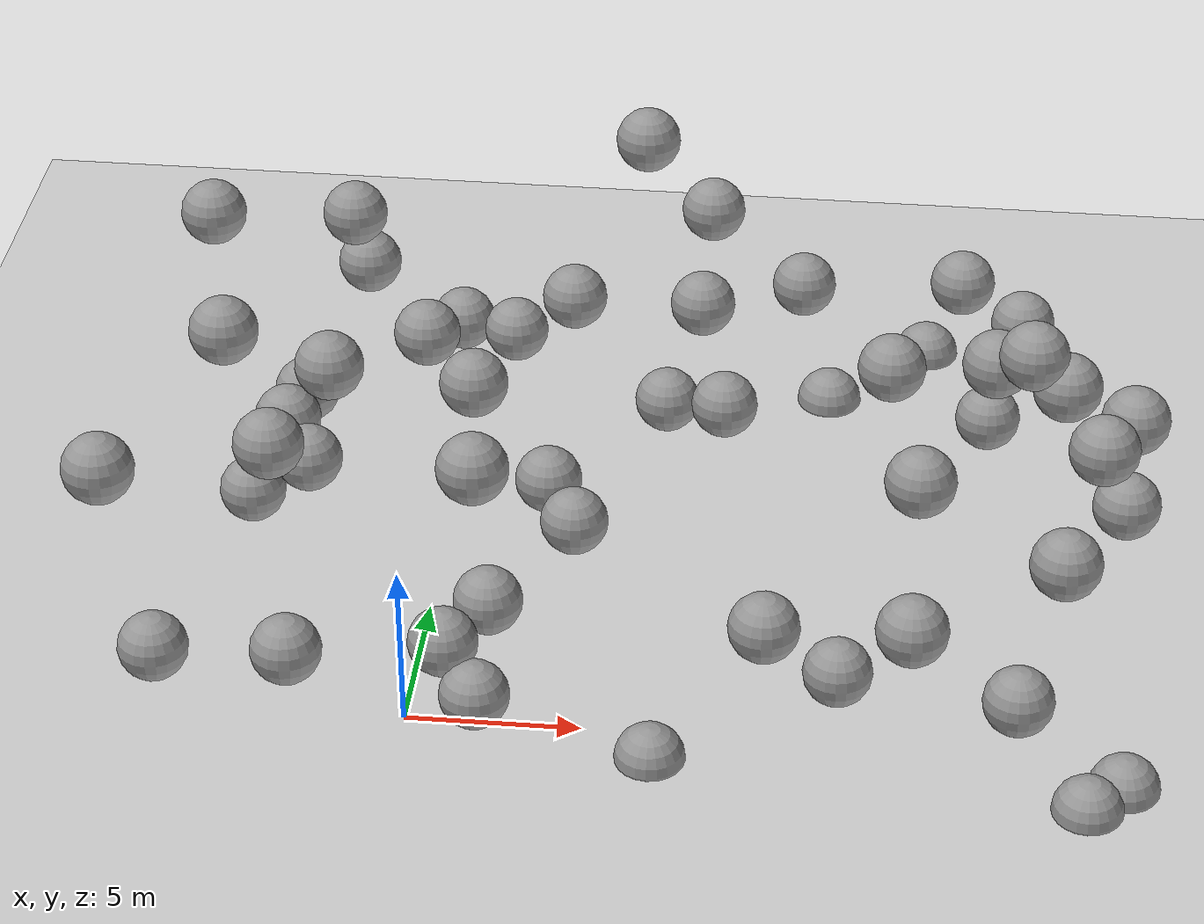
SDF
<sdf version="1.7">
 <world name="default">
  <model name="ground_plane">
   <static>1</static>
   <link name="link">
    <collision name="collision">
     <geometry><plane><normal>0 0 1</normal><size>100 100</size></plane></geometry>
     <surface>
      <contact><collide_bitmask>65535</collide_bitmask></contact>
      <friction><ode><mu>100</mu><mu2>50</mu2></ode></friction>
     </surface>
    </collision>
    <visual name="visual">
     <cast_shadows>0</cast_shadows>
     <geometry><plane><normal>0 0 1</normal><size>100 100</size></plane></geometry>
     <material>
      <script><uri>file://media/materials/scripts/gazebo.material</uri><name>Gazebo/Grey</name></script>
     </material>
    </visual>
   </link>
  </model>
  <model name="sphere_0">
   <static>1</static>
   <pose>17 8 8 0 0 0</pose>
   <link name="link">
    <inertial>
     <mass>418.87902047863906</mass>
     <inertia>
      <ixx>167.55160819145564</ixx>
      <iyy>167.55160819145564</iyy>
      <izz>167.55160819145564</izz>
      <ixy>0</ixy>
      <ixz>0</ixz>
      <iyz>0</iyz>
     </inertia>
    </inertial>
    <collision name="collision"><geometry><sphere><radius>1.0</radius></sphere></geometry></collision>
    <visual name="visual">
     <geometry><sphere><radius>1.0</radius></sphere></geometry>
     <material>
      <script><uri>file://media/materials/scripts/gazebo.material</uri><name>Gazebo/Grey</name></script>
     </material>
    </visual>
   </link>
  </model>
  <model name="sphere_1">
   <static>1</static>
   <pose>8 12 3 0 0 0</pose>
   <link name="link">
    <inertial>
     <mass>418.87902047863906</mass>
     <inertia>
      <ixx>167.55160819145564</ixx>
      <iyy>167.55160819145564</iyy>
      <izz>167.55160819145564</izz>
      <ixy>0</ixy>
      <ixz>0</ixz>
      <iyz>0</iyz>
     </inertia>
    </inertial>
    <collision name="collision"><geometry><sphere><radius>1.0</radius></sphere></geometry></collision>
    <visual name="visual">
     <geometry><sphere><radius>1.0</radius></sphere></geometry>
     <material>
      <script><uri>file://media/materials/scripts/gazebo.material</uri><name>Gazebo/Grey</name></script>
     </material>
    </visual>
   </link>
  </model>
  <model name="sphere_2">
   <static>1</static>
   <pose>7 -1 0 0 0 0</pose>
   <link name="link">
    <inertial>
     <mass>418.87902047863906</mass>
     <inertia>
      <ixx>167.55160819145564</ixx>
      <iyy>167.55160819145564</iyy>
      <izz>167.55160819145564</izz>
      <ixy>0</ixy>
      <ixz>0</ixz>
      <iyz>0</iyz>
     </inertia>
    </inertial>
    <collision name="collision"><geometry><sphere><radius>1.0</radius></sphere></geometry></collision>
    <visual name="visual">
     <geometry><sphere><radius>1.0</radius></sphere></geometry>
     <material>
      <script><uri>file://media/materials/scripts/gazebo.material</uri><name>Gazebo/Grey</name></script>
     </material>
    </visual>
   </link>
  </model>
  <model name="sphere_9">
   <static>1</static>
   <pose>18 8 7 0 0 0</pose>
   <link name="link">
    <inertial>
     <mass>418.87902047863906</mass>
     <inertia>
      <ixx>167.55160819145564</ixx>
      <iyy>167.55160819145564</iyy>
      <izz>167.55160819145564</izz>
      <ixy>0</ixy>
      <ixz>0</ixz>
      <iyz>0</iyz>
     </inertia>
    </inertial>
    <collision name="collision"><geometry><sphere><radius>1.0</radius></sphere></geometry></collision>
    <visual name="visual">
     <geometry><sphere><radius>1.0</radius></sphere></geometry>
     <material>
      <script><uri>file://media/materials/scripts/gazebo.material</uri><name>Gazebo/Grey</name></script>
     </material>
    </visual>
   </link>
  </model>
  <model name="sphere_10">
   <static>1</static>
   <pose>12 2 1 0 0 0</pose>
   <link name="link">
    <inertial>
     <mass>418.87902047863906</mass>
     <inertia>
      <ixx>167.55160819145564</ixx>
      <iyy>167.55160819145564</iyy>
      <izz>167.55160819145564</izz>
      <ixy>0</ixy>
      <ixz>0</ixz>
      <iyz>0</iyz>
     </inertia>
    </inertial>
    <collision name="collision"><geometry><sphere><radius>1.0</radius></sphere></geometry></collision>
    <visual name="visual">
     <geometry><sphere><radius>1.0</radius></sphere></geometry>
     <material>
      <script><uri>file://media/materials/scripts/gazebo.material</uri><name>Gazebo/Grey</name></script>
     </material>
    </visual>
   </link>
  </model>
  <model name="sphere_13">
   <static>1</static>
   <pose>-6 7 8 0 0 0</pose>
   <link name="link">
    <inertial>
     <mass>418.87902047863906</mass>
     <inertia>
      <ixx>167.55160819145564</ixx>
      <iyy>167.55160819145564</iyy>
      <izz>167.55160819145564</izz>
      <ixy>0</ixy>
      <ixz>0</ixz>
      <iyz>0</iyz>
     </inertia>
    </inertial>
    <collision name="collision"><geometry><sphere><radius>1.0</radius></sphere></geometry></collision>
    <visual name="visual">
     <geometry><sphere><radius>1.0</radius></sphere></geometry>
     <material>
      <script><uri>file://media/materials/scripts/gazebo.material</uri><name>Gazebo/Grey</name></script>
     </material>
    </visual>
   </link>
  </model>
  <model name="sphere_16">
   <static>1</static>
   <pose>19 -2 0 0 0 0</pose>
   <link name="link">
    <inertial>
     <mass>418.87902047863906</mass>
     <inertia>
      <ixx>167.55160819145564</ixx>
      <iyy>167.55160819145564</iyy>
      <izz>167.55160819145564</izz>
      <ixy>0</ixy>
      <ixz>0</ixz>
      <iyz>0</iyz>
     </inertia>
    </inertial>
    <collision name="collision"><geometry><sphere><radius>1.0</radius></sphere></geometry></collision>
    <visual name="visual">
     <geometry><sphere><radius>1.0</radius></sphere></geometry>
     <material>
      <script><uri>file://media/materials/scripts/gazebo.material</uri><name>Gazebo/Grey</name></script>
     </material>
    </visual>
   </link>
  </model>
  <model name="sphere_18">
   <static>1</static>
   <pose>-1 12 5 0 0 0</pose>
   <link name="link">
    <inertial>
     <mass>418.87902047863906</mass>
     <inertia>
      <ixx>167.55160819145564</ixx>
      <iyy>167.55160819145564</iyy>
      <izz>167.55160819145564</izz>
      <ixy>0</ixy>
      <ixz>0</ixz>
      <iyz>0</iyz>
     </inertia>
    </inertial>
    <collision name="collision"><geometry><sphere><radius>1.0</radius></sphere></geometry></collision>
    <visual name="visual">
     <geometry><sphere><radius>1.0</radius></sphere></geometry>
     <material>
      <script><uri>file://media/materials/scripts/gazebo.material</uri><name>Gazebo/Grey</name></script>
     </material>
    </visual>
   </link>
  </model>
  <model name="sphere_20">
   <static>1</static>
   <pose>14 3 7 0 0 0</pose>
   <link name="link">
    <inertial>
     <mass>418.87902047863906</mass>
     <inertia>
      <ixx>167.55160819145564</ixx>
      <iyy>167.55160819145564</iyy>
      <izz>167.55160819145564</izz>
      <ixy>0</ixy>
      <ixz>0</ixz>
      <iyz>0</iyz>
     </inertia>
    </inertial>
    <collision name="collision"><geometry><sphere><radius>1.0</radius></sphere></geometry></collision>
    <visual name="visual">
     <geometry><sphere><radius>1.0</radius></sphere></geometry>
     <material>
      <script><uri>file://media/materials/scripts/gazebo.material</uri><name>Gazebo/Grey</name></script>
     </material>
    </visual>
   </link>
  </model>
  <model name="sphere_22">
   <static>1</static>
   <pose>17 0 2 0 0 0</pose>
   <link name="link">
    <inertial>
     <mass>418.87902047863906</mass>
     <inertia>
      <ixx>167.55160819145564</ixx>
      <iyy>167.55160819145564</iyy>
      <izz>167.55160819145564</izz>
      <ixy>0</ixy>
      <ixz>0</ixz>
      <iyz>0</iyz>
     </inertia>
    </inertial>
    <collision name="collision"><geometry><sphere><radius>1.0</radius></sphere></geometry></collision>
    <visual name="visual">
     <geometry><sphere><radius>1.0</radius></sphere></geometry>
     <material>
      <script><uri>file://media/materials/scripts/gazebo.material</uri><name>Gazebo/Grey</name></script>
     </material>
    </visual>
   </link>
  </model>
  <model name="sphere_28">
   <static>1</static>
   <pose>-1 19 1 0 0 0</pose>
   <link name="link">
    <inertial>
     <mass>418.87902047863906</mass>
     <inertia>
      <ixx>167.55160819145564</ixx>
      <iyy>167.55160819145564</iyy>
      <izz>167.55160819145564</izz>
      <ixy>0</ixy>
      <ixz>0</ixz>
      <iyz>0</iyz>
     </inertia>
    </inertial>
    <collision name="collision"><geometry><sphere><radius>1.0</radius></sphere></geometry></collision>
    <visual name="visual">
     <geometry><sphere><radius>1.0</radius></sphere></geometry>
     <material>
      <script><uri>file://media/materials/scripts/gazebo.material</uri><name>Gazebo/Grey</name></script>
     </material>
    </visual>
   </link>
  </model>
  <model name="sphere_38">
   <static>1</static>
   <pose>1 17 2 0 0 0</pose>
   <link name="link">
    <inertial>
     <mass>418.87902047863906</mass>
     <inertia>
      <ixx>167.55160819145564</ixx>
      <iyy>167.55160819145564</iyy>
      <izz>167.55160819145564</izz>
      <ixy>0</ixy>
      <ixz>0</ixz>
      <iyz>0</iyz>
     </inertia>
    </inertial>
    <collision name="collision"><geometry><sphere><radius>1.0</radius></sphere></geometry></collision>
    <visual name="visual">
     <geometry><sphere><radius>1.0</radius></sphere></geometry>
     <material>
      <script><uri>file://media/materials/scripts/gazebo.material</uri><name>Gazebo/Grey</name></script>
     </material>
    </visual>
   </link>
  </model>
  <model name="sphere_41">
   <static>1</static>
   <pose>-6 9 1 0 0 0</pose>
   <link name="link">
    <inertial>
     <mass>418.87902047863906</mass>
     <inertia>
      <ixx>167.55160819145564</ixx>
      <iyy>167.55160819145564</iyy>
      <izz>167.55160819145564</izz>
      <ixy>0</ixy>
      <ixz>0</ixz>
      <iyz>0</iyz>
     </inertia>
    </inertial>
    <collision name="collision"><geometry><sphere><radius>1.0</radius></sphere></geometry></collision>
    <visual name="visual">
     <geometry><sphere><radius>1.0</radius></sphere></geometry>
     <material>
      <script><uri>file://media/materials/scripts/gazebo.material</uri><name>Gazebo/Grey</name></script>
     </material>
    </visual>
   </link>
  </model>
  <model name="sphere_45">
   <static>1</static>
   <pose>7 16 4 0 0 0</pose>
   <link name="link">
    <inertial>
     <mass>418.87902047863906</mass>
     <inertia>
      <ixx>167.55160819145564</ixx>
      <iyy>167.55160819145564</iyy>
      <izz>167.55160819145564</izz>
      <ixy>0</ixy>
      <ixz>0</ixz>
      <iyz>0</iyz>
     </inertia>
    </inertial>
    <collision name="collision"><geometry><sphere><radius>1.0</radius></sphere></geometry></collision>
    <visual name="visual">
     <geometry><sphere><radius>1.0</radius></sphere></geometry>
     <material>
      <script><uri>file://media/materials/scripts/gazebo.material</uri><name>Gazebo/Grey</name></script>
     </material>
    </visual>
   </link>
  </model>
  <model name="sphere_47">
   <static>1</static>
   <pose>5 19 8 0 0 0</pose>
   <link name="link">
    <inertial>
     <mass>418.87902047863906</mass>
     <inertia>
      <ixx>167.55160819145564</ixx>
      <iyy>167.55160819145564</iyy>
      <izz>167.55160819145564</izz>
      <ixy>0</ixy>
      <ixz>0</ixz>
      <iyz>0</iyz>
     </inertia>
    </inertial>
    <collision name="collision"><geometry><sphere><radius>1.0</radius></sphere></geometry></collision>
    <visual name="visual">
     <geometry><sphere><radius>1.0</radius></sphere></geometry>
     <material>
      <script><uri>file://media/materials/scripts/gazebo.material</uri><name>Gazebo/Grey</name></script>
     </material>
    </visual>
   </link>
  </model>
  <model name="sphere_62">
   <static>1</static>
   <pose>15 18 4 0 0 0</pose>
   <link name="link">
    <inertial>
     <mass>418.87902047863906</mass>
     <inertia>
      <ixx>167.55160819145564</ixx>
      <iyy>167.55160819145564</iyy>
      <izz>167.55160819145564</izz>
      <ixy>0</ixy>
      <ixz>0</ixz>
      <iyz>0</iyz>
     </inertia>
    </inertial>
    <collision name="collision"><geometry><sphere><radius>1.0</radius></sphere></geometry></collision>
    <visual name="visual">
     <geometry><sphere><radius>1.0</radius></sphere></geometry>
     <material>
      <script><uri>file://media/materials/scripts/gazebo.material</uri><name>Gazebo/Grey</name></script>
     </material>
    </visual>
   </link>
  </model>
  <model name="sphere_67">
   <static>1</static>
   <pose>16 9 7 0 0 0</pose>
   <link name="link">
    <inertial>
     <mass>418.87902047863906</mass>
     <inertia>
      <ixx>167.55160819145564</ixx>
      <iyy>167.55160819145564</iyy>
      <izz>167.55160819145564</izz>
      <ixy>0</ixy>
      <ixz>0</ixz>
      <iyz>0</iyz>
     </inertia>
    </inertial>
    <collision name="collision"><geometry><sphere><radius>1.0</radius></sphere></geometry></collision>
    <visual name="visual">
     <geometry><sphere><radius>1.0</radius></sphere></geometry>
     <material>
      <script><uri>file://media/materials/scripts/gazebo.material</uri><name>Gazebo/Grey</name></script>
     </material>
    </visual>
   </link>
  </model>
  <model name="sphere_70">
   <static>1</static>
   <pose>4 7 2 0 0 0</pose>
   <link name="link">
    <inertial>
     <mass>418.87902047863906</mass>
     <inertia>
      <ixx>167.55160819145564</ixx>
      <iyy>167.55160819145564</iyy>
      <izz>167.55160819145564</izz>
      <ixy>0</ixy>
      <ixz>0</ixz>
      <iyz>0</iyz>
     </inertia>
    </inertial>
    <collision name="collision"><geometry><sphere><radius>1.0</radius></sphere></geometry></collision>
    <visual name="visual">
     <geometry><sphere><radius>1.0</radius></sphere></geometry>
     <material>
      <script><uri>file://media/materials/scripts/gazebo.material</uri><name>Gazebo/Grey</name></script>
     </material>
    </visual>
   </link>
  </model>
  <model name="sphere_73">
   <static>1</static>
   <pose>-4 3 7 0 0 0</pose>
   <link name="link">
    <inertial>
     <mass>418.87902047863906</mass>
     <inertia>
      <ixx>167.55160819145564</ixx>
      <iyy>167.55160819145564</iyy>
      <izz>167.55160819145564</izz>
      <ixy>0</ixy>
      <ixz>0</ixz>
      <iyz>0</iyz>
     </inertia>
    </inertial>
    <collision name="collision"><geometry><sphere><radius>1.0</radius></sphere></geometry></collision>
    <visual name="visual">
     <geometry><sphere><radius>1.0</radius></sphere></geometry>
     <material>
      <script><uri>file://media/materials/scripts/gazebo.material</uri><name>Gazebo/Grey</name></script>
     </material>
    </visual>
   </link>
  </model>
  <model name="sphere_74">
   <static>1</static>
   <pose>-8 0 8 0 0 0</pose>
   <link name="link">
    <inertial>
     <mass>418.87902047863906</mass>
     <inertia>
      <ixx>167.55160819145564</ixx>
      <iyy>167.55160819145564</iyy>
      <izz>167.55160819145564</izz>
      <ixy>0</ixy>
      <ixz>0</ixz>
      <iyz>0</iyz>
     </inertia>
    </inertial>
    <collision name="collision"><geometry><sphere><radius>1.0</radius></sphere></geometry></collision>
    <visual name="visual">
     <geometry><sphere><radius>1.0</radius></sphere></geometry>
     <material>
      <script><uri>file://media/materials/scripts/gazebo.material</uri><name>Gazebo/Grey</name></script>
     </material>
    </visual>
   </link>
  </model>
  <model name="sphere_76">
   <static>1</static>
   <pose>-5 13 2 0 0 0</pose>
   <link name="link">
    <inertial>
     <mass>418.87902047863906</mass>
     <inertia>
      <ixx>167.55160819145564</ixx>
      <iyy>167.55160819145564</iyy>
      <izz>167.55160819145564</izz>
      <ixy>0</ixy>
      <ixz>0</ixz>
      <iyz>0</iyz>
     </inertia>
    </inertial>
    <collision name="collision"><geometry><sphere><radius>1.0</radius></sphere></geometry></collision>
    <visual name="visual">
     <geometry><sphere><radius>1.0</radius></sphere></geometry>
     <material>
      <script><uri>file://media/materials/scripts/gazebo.material</uri><name>Gazebo/Grey</name></script>
     </material>
    </visual>
   </link>
  </model>
  <model name="sphere_77">
   <static>1</static>
   <pose>-4 19 3 0 0 0</pose>
   <link name="link">
    <inertial>
     <mass>418.87902047863906</mass>
     <inertia>
      <ixx>167.55160819145564</ixx>
      <iyy>167.55160819145564</iyy>
      <izz>167.55160819145564</izz>
      <ixy>0</ixy>
      <ixz>0</ixz>
      <iyz>0</iyz>
     </inertia>
    </inertial>
    <collision name="collision"><geometry><sphere><radius>1.0</radius></sphere></geometry></collision>
    <visual name="visual">
     <geometry><sphere><radius>1.0</radius></sphere></geometry>
     <material>
      <script><uri>file://media/materials/scripts/gazebo.material</uri><name>Gazebo/Grey</name></script>
     </material>
    </visual>
   </link>
  </model>
  <model name="sphere_80">
   <static>1</static>
   <pose>7 20 5 0 0 0</pose>
   <link name="link">
    <inertial>
     <mass>418.87902047863906</mass>
     <inertia>
      <ixx>167.55160819145564</ixx>
      <iyy>167.55160819145564</iyy>
      <izz>167.55160819145564</izz>
      <ixy>0</ixy>
      <ixz>0</ixz>
      <iyz>0</iyz>
     </inertia>
    </inertial>
    <collision name="collision"><geometry><sphere><radius>1.0</radius></sphere></geometry></collision>
    <visual name="visual">
     <geometry><sphere><radius>1.0</radius></sphere></geometry>
     <material>
      <script><uri>file://media/materials/scripts/gazebo.material</uri><name>Gazebo/Grey</name></script>
     </material>
    </visual>
   </link>
  </model>
  <model name="sphere_82">
   <static>1</static>
   <pose>20 8 3 0 0 0</pose>
   <link name="link">
    <inertial>
     <mass>418.87902047863906</mass>
     <inertia>
      <ixx>167.55160819145564</ixx>
      <iyy>167.55160819145564</iyy>
      <izz>167.55160819145564</izz>
      <ixy>0</ixy>
      <ixz>0</ixz>
      <iyz>0</iyz>
     </inertia>
    </inertial>
    <collision name="collision"><geometry><sphere><radius>1.0</radius></sphere></geometry></collision>
    <visual name="visual">
     <geometry><sphere><radius>1.0</radius></sphere></geometry>
     <material>
      <script><uri>file://media/materials/scripts/gazebo.material</uri><name>Gazebo/Grey</name></script>
     </material>
    </visual>
   </link>
  </model>
  <model name="sphere_86">
   <static>1</static>
   <pose>16 15 1 0 0 0</pose>
   <link name="link">
    <inertial>
     <mass>418.87902047863906</mass>
     <inertia>
      <ixx>167.55160819145564</ixx>
      <iyy>167.55160819145564</iyy>
      <izz>167.55160819145564</izz>
      <ixy>0</ixy>
      <ixz>0</ixz>
      <iyz>0</iyz>
     </inertia>
    </inertial>
    <collision name="collision"><geometry><sphere><radius>1.0</radius></sphere></geometry></collision>
    <visual name="visual">
     <geometry><sphere><radius>1.0</radius></sphere></geometry>
     <material>
      <script><uri>file://media/materials/scripts/gazebo.material</uri><name>Gazebo/Grey</name></script>
     </material>
    </visual>
   </link>
  </model>
  <model name="sphere_88">
   <static>1</static>
   <pose>1 8 6 0 0 0</pose>
   <link name="link">
    <inertial>
     <mass>418.87902047863906</mass>
     <inertia>
      <ixx>167.55160819145564</ixx>
      <iyy>167.55160819145564</iyy>
      <izz>167.55160819145564</izz>
      <ixy>0</ixy>
      <ixz>0</ixz>
      <iyz>0</iyz>
     </inertia>
    </inertial>
    <collision name="collision"><geometry><sphere><radius>1.0</radius></sphere></geometry></collision>
    <visual name="visual">
     <geometry><sphere><radius>1.0</radius></sphere></geometry>
     <material>
      <script><uri>file://media/materials/scripts/gazebo.material</uri><name>Gazebo/Grey</name></script>
     </material>
    </visual>
   </link>
  </model>
  <model name="sphere_89">
   <static>1</static>
   <pose>-5 10 3 0 0 0</pose>
   <link name="link">
    <inertial>
     <mass>418.87902047863906</mass>
     <inertia>
      <ixx>167.55160819145564</ixx>
      <iyy>167.55160819145564</iyy>
      <izz>167.55160819145564</izz>
      <ixy>0</ixy>
      <ixz>0</ixz>
      <iyz>0</iyz>
     </inertia>
    </inertial>
    <collision name="collision"><geometry><sphere><radius>1.0</radius></sphere></geometry></collision>
    <visual name="visual">
     <geometry><sphere><radius>1.0</radius></sphere></geometry>
     <material>
      <script><uri>file://media/materials/scripts/gazebo.material</uri><name>Gazebo/Grey</name></script>
     </material>
    </visual>
   </link>
  </model>
  <model name="sphere_92">
   <static>1</static>
   <pose>17 19 2 0 0 0</pose>
   <link name="link">
    <inertial>
     <mass>418.87902047863906</mass>
     <inertia>
      <ixx>167.55160819145564</ixx>
      <iyy>167.55160819145564</iyy>
      <izz>167.55160819145564</izz>
      <ixy>0</ixy>
      <ixz>0</ixz>
      <iyz>0</iyz>
     </inertia>
    </inertial>
    <collision name="collision"><geometry><sphere><radius>1.0</radius></sphere></geometry></collision>
    <visual name="visual">
     <geometry><sphere><radius>1.0</radius></sphere></geometry>
     <material>
      <script><uri>file://media/materials/scripts/gazebo.material</uri><name>Gazebo/Grey</name></script>
     </material>
    </visual>
   </link>
  </model>
  <model name="sphere_93">
   <static>1</static>
   <pose>11 17 0 0 0 0</pose>
   <link name="link">
    <inertial>
     <mass>418.87902047863906</mass>
     <inertia>
      <ixx>167.55160819145564</ixx>
      <iyy>167.55160819145564</iyy>
      <izz>167.55160819145564</izz>
      <ixy>0</ixy>
      <ixz>0</ixz>
      <iyz>0</iyz>
     </inertia>
    </inertial>
    <collision name="collision"><geometry><sphere><radius>1.0</radius></sphere></geometry></collision>
    <visual name="visual">
     <geometry><sphere><radius>1.0</radius></sphere></geometry>
     <material>
      <script><uri>file://media/materials/scripts/gazebo.material</uri><name>Gazebo/Grey</name></script>
     </material>
    </visual>
   </link>
  </model>
  <model name="sphere_96">
   <static>1</static>
   <pose>-3 -1 3 0 0 0</pose>
   <link name="link">
    <inertial>
     <mass>418.87902047863906</mass>
     <inertia>
      <ixx>167.55160819145564</ixx>
      <iyy>167.55160819145564</iyy>
      <izz>167.55160819145564</izz>
      <ixy>0</ixy>
      <ixz>0</ixz>
      <iyz>0</iyz>
     </inertia>
    </inertial>
    <collision name="collision"><geometry><sphere><radius>1.0</radius></sphere></geometry></collision>
    <visual name="visual">
     <geometry><sphere><radius>1.0</radius></sphere></geometry>
     <material>
      <script><uri>file://media/materials/scripts/gazebo.material</uri><name>Gazebo/Grey</name></script>
     </material>
    </visual>
   </link>
  </model>
  <model name="sphere_97">
   <static>1</static>
   <pose>-3 7 7 0 0 0</pose>
   <link name="link">
    <inertial>
     <mass>418.87902047863906</mass>
     <inertia>
      <ixx>167.55160819145564</ixx>
      <iyy>167.55160819145564</iyy>
      <izz>167.55160819145564</izz>
      <ixy>0</ixy>
      <ixz>0</ixz>
      <iyz>0</iyz>
     </inertia>
    </inertial>
    <collision name="collision"><geometry><sphere><radius>1.0</radius></sphere></geometry></collision>
    <visual name="visual">
     <geometry><sphere><radius>1.0</radius></sphere></geometry>
     <material>
      <script><uri>file://media/materials/scripts/gazebo.material</uri><name>Gazebo/Grey</name></script>
     </material>
    </visual>
   </link>
  </model>
  <model name="sphere_102">
   <static>1</static>
   <pose>2 3 2 0 0 0</pose>
   <link name="link">
    <inertial>
     <mass>418.87902047863906</mass>
     <inertia>
      <ixx>167.55160819145564</ixx>
      <iyy>167.55160819145564</iyy>
      <izz>167.55160819145564</izz>
      <ixy>0</ixy>
      <ixz>0</ixz>
      <iyz>0</iyz>
     </inertia>
    </inertial>
    <collision name="collision"><geometry><sphere><radius>1.0</radius></sphere></geometry></collision>
    <visual name="visual">
     <geometry><sphere><radius>1.0</radius></sphere></geometry>
     <material>
      <script><uri>file://media/materials/scripts/gazebo.material</uri><name>Gazebo/Grey</name></script>
     </material>
    </visual>
   </link>
  </model>
  <model name="sphere_104">
   <static>1</static>
   <pose>13 10 6 0 0 0</pose>
   <link name="link">
    <inertial>
     <mass>418.87902047863906</mass>
     <inertia>
      <ixx>167.55160819145564</ixx>
      <iyy>167.55160819145564</iyy>
      <izz>167.55160819145564</izz>
      <ixy>0</ixy>
      <ixz>0</ixz>
      <iyz>0</iyz>
     </inertia>
    </inertial>
    <collision name="collision"><geometry><sphere><radius>1.0</radius></sphere></geometry></collision>
    <visual name="visual">
     <geometry><sphere><radius>1.0</radius></sphere></geometry>
     <material>
      <script><uri>file://media/materials/scripts/gazebo.material</uri><name>Gazebo/Grey</name></script>
     </material>
    </visual>
   </link>
  </model>
  <model name="sphere_108">
   <static>1</static>
   <pose>6 15 1 0 0 0</pose>
   <link name="link">
    <inertial>
     <mass>418.87902047863906</mass>
     <inertia>
      <ixx>167.55160819145564</ixx>
      <iyy>167.55160819145564</iyy>
      <izz>167.55160819145564</izz>
      <ixy>0</ixy>
      <ixz>0</ixz>
      <iyz>0</iyz>
     </inertia>
    </inertial>
    <collision name="collision"><geometry><sphere><radius>1.0</radius></sphere></geometry></collision>
    <visual name="visual">
     <geometry><sphere><radius>1.0</radius></sphere></geometry>
     <material>
      <script><uri>file://media/materials/scripts/gazebo.material</uri><name>Gazebo/Grey</name></script>
     </material>
    </visual>
   </link>
  </model>
  <model name="sphere_109">
   <static>1</static>
   <pose>2 1 8 0 0 0</pose>
   <link name="link">
    <inertial>
     <mass>418.87902047863906</mass>
     <inertia>
      <ixx>167.55160819145564</ixx>
      <iyy>167.55160819145564</iyy>
      <izz>167.55160819145564</izz>
      <ixy>0</ixy>
      <ixz>0</ixz>
      <iyz>0</iyz>
     </inertia>
    </inertial>
    <collision name="collision"><geometry><sphere><radius>1.0</radius></sphere></geometry></collision>
    <visual name="visual">
     <geometry><sphere><radius>1.0</radius></sphere></geometry>
     <material>
      <script><uri>file://media/materials/scripts/gazebo.material</uri><name>Gazebo/Grey</name></script>
     </material>
    </visual>
   </link>
  </model>
  <model name="sphere_118">
   <static>1</static>
   <pose>-8 15 7 0 0 0</pose>
   <link name="link">
    <inertial>
     <mass>418.87902047863906</mass>
     <inertia>
      <ixx>167.55160819145564</ixx>
      <iyy>167.55160819145564</iyy>
      <izz>167.55160819145564</izz>
      <ixy>0</ixy>
      <ixz>0</ixz>
      <iyz>0</iyz>
     </inertia>
    </inertial>
    <collision name="collision"><geometry><sphere><radius>1.0</radius></sphere></geometry></collision>
    <visual name="visual">
     <geometry><sphere><radius>1.0</radius></sphere></geometry>
     <material>
      <script><uri>file://media/materials/scripts/gazebo.material</uri><name>Gazebo/Grey</name></script>
     </material>
    </visual>
   </link>
  </model>
  <model name="sphere_119">
   <static>1</static>
   <pose>-4 17 6 0 0 0</pose>
   <link name="link">
    <inertial>
     <mass>418.87902047863906</mass>
     <inertia>
      <ixx>167.55160819145564</ixx>
      <iyy>167.55160819145564</iyy>
      <izz>167.55160819145564</izz>
      <ixy>0</ixy>
      <ixz>0</ixz>
      <iyz>0</iyz>
     </inertia>
    </inertial>
    <collision name="collision"><geometry><sphere><radius>1.0</radius></sphere></geometry></collision>
    <visual name="visual">
     <geometry><sphere><radius>1.0</radius></sphere></geometry>
     <material>
      <script><uri>file://media/materials/scripts/gazebo.material</uri><name>Gazebo/Grey</name></script>
     </material>
    </visual>
   </link>
  </model>
  <model name="sphere_122">
   <static>1</static>
   <pose>1 1 2 0 0 0</pose>
   <link name="link">
    <inertial>
     <mass>418.87902047863906</mass>
     <inertia>
      <ixx>167.55160819145564</ixx>
      <iyy>167.55160819145564</iyy>
      <izz>167.55160819145564</izz>
      <ixy>0</ixy>
      <ixz>0</ixz>
      <iyz>0</iyz>
     </inertia>
    </inertial>
    <collision name="collision"><geometry><sphere><radius>1.0</radius></sphere></geometry></collision>
    <visual name="visual">
     <geometry><sphere><radius>1.0</radius></sphere></geometry>
     <material>
      <script><uri>file://media/materials/scripts/gazebo.material</uri><name>Gazebo/Grey</name></script>
     </material>
    </visual>
   </link>
  </model>
  <model name="sphere_123">
   <static>1</static>
   <pose>20 -1 0 0 0 0</pose>
   <link name="link">
    <inertial>
     <mass>418.87902047863906</mass>
     <inertia>
      <ixx>167.55160819145564</ixx>
      <iyy>167.55160819145564</iyy>
      <izz>167.55160819145564</izz>
      <ixy>0</ixy>
      <ixz>0</ixz>
      <iyz>0</iyz>
     </inertia>
    </inertial>
    <collision name="collision"><geometry><sphere><radius>1.0</radius></sphere></geometry></collision>
    <visual name="visual">
     <geometry><sphere><radius>1.0</radius></sphere></geometry>
     <material>
      <script><uri>file://media/materials/scripts/gazebo.material</uri><name>Gazebo/Grey</name></script>
     </material>
    </visual>
   </link>
  </model>
  <model name="sphere_124">
   <static>1</static>
   <pose>14 -1 5 0 0 0</pose>
   <link name="link">
    <inertial>
     <mass>418.87902047863906</mass>
     <inertia>
      <ixx>167.55160819145564</ixx>
      <iyy>167.55160819145564</iyy>
      <izz>167.55160819145564</izz>
      <ixy>0</ixy>
      <ixz>0</ixz>
      <iyz>0</iyz>
     </inertia>
    </inertial>
    <collision name="collision"><geometry><sphere><radius>1.0</radius></sphere></geometry></collision>
    <visual name="visual">
     <geometry><sphere><radius>1.0</radius></sphere></geometry>
     <material>
      <script><uri>file://media/materials/scripts/gazebo.material</uri><name>Gazebo/Grey</name></script>
     </material>
    </visual>
   </link>
  </model>
  <model name="sphere_126">
   <static>1</static>
   <pose>10 0 4 0 0 0</pose>
   <link name="link">
    <inertial>
     <mass>418.87902047863906</mass>
     <inertia>
      <ixx>167.55160819145564</ixx>
      <iyy>167.55160819145564</iyy>
      <izz>167.55160819145564</izz>
      <ixy>0</ixy>
      <ixz>0</ixz>
      <iyz>0</iyz>
     </inertia>
    </inertial>
    <collision name="collision"><geometry><sphere><radius>1.0</radius></sphere></geometry></collision>
    <visual name="visual">
     <geometry><sphere><radius>1.0</radius></sphere></geometry>
     <material>
      <script><uri>file://media/materials/scripts/gazebo.material</uri><name>Gazebo/Grey</name></script>
     </material>
    </visual>
   </link>
  </model>
  <model name="sphere_128">
   <static>1</static>
   <pose>-4 8 3 0 0 0</pose>
   <link name="link">
    <inertial>
     <mass>418.87902047863906</mass>
     <inertia>
      <ixx>167.55160819145564</ixx>
      <iyy>167.55160819145564</iyy>
      <izz>167.55160819145564</izz>
      <ixy>0</ixy>
      <ixz>0</ixz>
      <iyz>0</iyz>
     </inertia>
    </inertial>
    <collision name="collision"><geometry><sphere><radius>1.0</radius></sphere></geometry></collision>
    <visual name="visual">
     <geometry><sphere><radius>1.0</radius></sphere></geometry>
     <material>
      <script><uri>file://media/materials/scripts/gazebo.material</uri><name>Gazebo/Grey</name></script>
     </material>
    </visual>
   </link>
  </model>
  <model name="sphere_130">
   <static>1</static>
   <pose>10 19 3 0 0 0</pose>
   <link name="link">
    <inertial>
     <mass>418.87902047863906</mass>
     <inertia>
      <ixx>167.55160819145564</ixx>
      <iyy>167.55160819145564</iyy>
      <izz>167.55160819145564</izz>
      <ixy>0</ixy>
      <ixz>0</ixz>
      <iyz>0</iyz>
     </inertia>
    </inertial>
    <collision name="collision"><geometry><sphere><radius>1.0</radius></sphere></geometry></collision>
    <visual name="visual">
     <geometry><sphere><radius>1.0</radius></sphere></geometry>
     <material>
      <script><uri>file://media/materials/scripts/gazebo.material</uri><name>Gazebo/Grey</name></script>
     </material>
    </visual>
   </link>
  </model>
  <model name="sphere_136">
   <static>1</static>
   <pose>3 16 4 0 0 0</pose>
   <link name="link">
    <inertial>
     <mass>418.87902047863906</mass>
     <inertia>
      <ixx>167.55160819145564</ixx>
      <iyy>167.55160819145564</iyy>
      <izz>167.55160819145564</izz>
      <ixy>0</ixy>
      <ixz>0</ixz>
      <iyz>0</iyz>
     </inertia>
    </inertial>
    <collision name="collision"><geometry><sphere><radius>1.0</radius></sphere></geometry></collision>
    <visual name="visual">
     <geometry><sphere><radius>1.0</radius></sphere></geometry>
     <material>
      <script><uri>file://media/materials/scripts/gazebo.material</uri><name>Gazebo/Grey</name></script>
     </material>
    </visual>
   </link>
  </model>
  <model name="sphere_137">
   <static>1</static>
   <pose>3 9 2 0 0 0</pose>
   <link name="link">
    <inertial>
     <mass>418.87902047863906</mass>
     <inertia>
      <ixx>167.55160819145564</ixx>
      <iyy>167.55160819145564</iyy>
      <izz>167.55160819145564</izz>
      <ixy>0</ixy>
      <ixz>0</ixz>
      <iyz>0</iyz>
     </inertia>
    </inertial>
    <collision name="collision"><geometry><sphere><radius>1.0</radius></sphere></geometry></collision>
    <visual name="visual">
     <geometry><sphere><radius>1.0</radius></sphere></geometry>
     <material>
      <script><uri>file://media/materials/scripts/gazebo.material</uri><name>Gazebo/Grey</name></script>
     </material>
    </visual>
   </link>
  </model>
  <model name="sphere_138">
   <static>1</static>
   <pose>20 8 6 0 0 0</pose>
   <link name="link">
    <inertial>
     <mass>418.87902047863906</mass>
     <inertia>
      <ixx>167.55160819145564</ixx>
      <iyy>167.55160819145564</iyy>
      <izz>167.55160819145564</izz>
      <ixy>0</ixy>
      <ixz>0</ixz>
      <iyz>0</iyz>
     </inertia>
    </inertial>
    <collision name="collision"><geometry><sphere><radius>1.0</radius></sphere></geometry></collision>
    <visual name="visual">
     <geometry><sphere><radius>1.0</radius></sphere></geometry>
     <material>
      <script><uri>file://media/materials/scripts/gazebo.material</uri><name>Gazebo/Grey</name></script>
     </material>
    </visual>
   </link>
  </model>
  <model name="sphere_139">
   <static>1</static>
   <pose>2 0 1 0 0 0</pose>
   <link name="link">
    <inertial>
     <mass>418.87902047863906</mass>
     <inertia>
      <ixx>167.55160819145564</ixx>
      <iyy>167.55160819145564</iyy>
      <izz>167.55160819145564</izz>
      <ixy>0</ixy>
      <ixz>0</ixz>
      <iyz>0</iyz>
     </inertia>
    </inertial>
    <collision name="collision"><geometry><sphere><radius>1.0</radius></sphere></geometry></collision>
    <visual name="visual">
     <geometry><sphere><radius>1.0</radius></sphere></geometry>
     <material>
      <script><uri>file://media/materials/scripts/gazebo.material</uri><name>Gazebo/Grey</name></script>
     </material>
    </visual>
   </link>
  </model>
  <model name="sphere_140">
   <static>1</static>
   <pose>14 20 0 0 0 0</pose>
   <link name="link">
    <inertial>
     <mass>418.87902047863906</mass>
     <inertia>
      <ixx>167.55160819145564</ixx>
      <iyy>167.55160819145564</iyy>
      <izz>167.55160819145564</izz>
      <ixy>0</ixy>
      <ixz>0</ixz>
      <iyz>0</iyz>
     </inertia>
    </inertial>
    <collision name="collision"><geometry><sphere><radius>1.0</radius></sphere></geometry></collision>
    <visual name="visual">
     <geometry><sphere><radius>1.0</radius></sphere></geometry>
     <material>
      <script><uri>file://media/materials/scripts/gazebo.material</uri><name>Gazebo/Grey</name></script>
     </material>
    </visual>
   </link>
  </model>
  <model name="sphere_142">
   <static>1</static>
   <pose>-7 0 2 0 0 0</pose>
   <link name="link">
    <inertial>
     <mass>418.87902047863906</mass>
     <inertia>
      <ixx>167.55160819145564</ixx>
      <iyy>167.55160819145564</iyy>
      <izz>167.55160819145564</izz>
      <ixy>0</ixy>
      <ixz>0</ixz>
      <iyz>0</iyz>
     </inertia>
    </inertial>
    <collision name="collision"><geometry><sphere><radius>1.0</radius></sphere></geometry></collision>
    <visual name="visual">
     <geometry><sphere><radius>1.0</radius></sphere></geometry>
     <material>
      <script><uri>file://media/materials/scripts/gazebo.material</uri><name>Gazebo/Grey</name></script>
     </material>
    </visual>
   </link>
  </model>
  <model name="sphere_147">
   <static>1</static>
   <pose>18 1 6 0 0 0</pose>
   <link name="link">
    <inertial>
     <mass>418.87902047863906</mass>
     <inertia>
      <ixx>167.55160819145564</ixx>
      <iyy>167.55160819145564</iyy>
      <izz>167.55160819145564</izz>
      <ixy>0</ixy>
      <ixz>0</ixz>
      <iyz>0</iyz>
     </inertia>
    </inertial>
    <collision name="collision"><geometry><sphere><radius>1.0</radius></sphere></geometry></collision>
    <visual name="visual">
     <geometry><sphere><radius>1.0</radius></sphere></geometry>
     <material>
      <script><uri>file://media/materials/scripts/gazebo.material</uri><name>Gazebo/Grey</name></script>
     </material>
    </visual>
   </link>
  </model>
  <model name="sphere_150">
   <static>1</static>
   <pose>19 5 7 0 0 0</pose>
   <link name="link">
    <inertial>
     <mass>418.87902047863906</mass>
     <inertia>
      <ixx>167.55160819145564</ixx>
      <iyy>167.55160819145564</iyy>
      <izz>167.55160819145564</izz>
      <ixy>0</ixy>
      <ixz>0</ixz>
      <iyz>0</iyz>
     </inertia>
    </inertial>
    <collision name="collision"><geometry><sphere><radius>1.0</radius></sphere></geometry></collision>
    <visual name="visual">
     <geometry><sphere><radius>1.0</radius></sphere></geometry>
     <material>
      <script><uri>file://media/materials/scripts/gazebo.material</uri><name>Gazebo/Grey</name></script>
     </material>
    </visual>
   </link>
  </model>
 </world>
</sdf>
